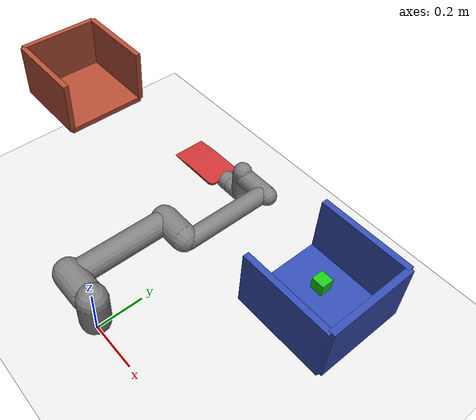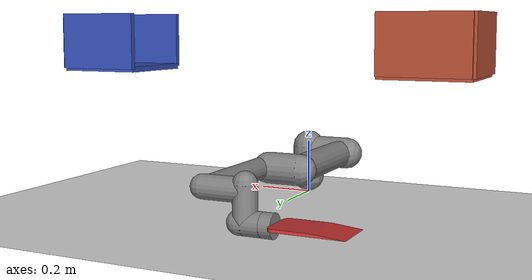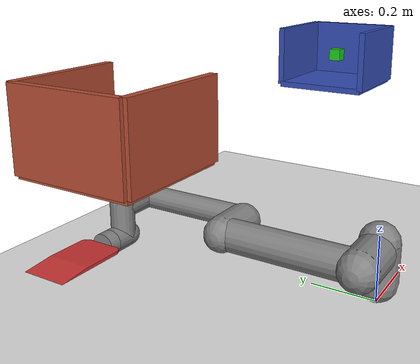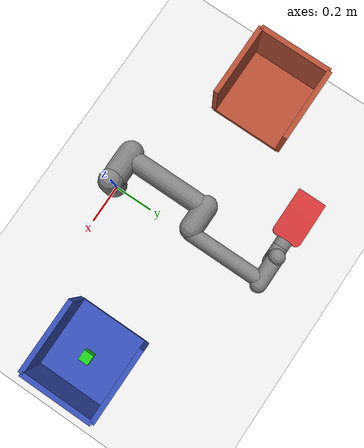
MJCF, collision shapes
<?xml version="1.0" ?>
<mujoco model="ur5e_pick_place">
    <compiler angle="radian" meshdir="assets" autolimits="true"/>

    <option integrator="implicitfast" gravity="0 0 -9.81">
        <flag contact="enable"/>
    </option>

    <!-- Default settings for physics and contact -->
    <default>
        <geom friction="1 0.005 0.0001" condim="3"/>
        <default class="ur5e">
            <material specular="0.5" shininess="0.25"/>
            <joint axis="0 1 0" range="-6.28319 6.28319" armature="0.1"/>
            <general gaintype="fixed" biastype="affine" ctrlrange="-6.2831 6.2831" gainprm="2000" biasprm="0 -2000 -400"
                forcerange="-150 150"/>
            <default class="size3">
                <default class="size3_limited">
                <joint range="-3.1415 3.1415"/>
                <general ctrlrange="-3.1415 3.1415"/>
                </default>
            </default>
            <default class="size1">
                <general gainprm="500" biasprm="0 -500 -100" forcerange="-28 28"/>
            </default>
            <default class="visual">
                <geom type="mesh" contype="0" conaffinity="0" group="2"/>
            </default>
            <default class="collision">
                <geom type="capsule" group="3"/>
                <default class="eef_collision">
                <geom type="cylinder"/>
                </default>
            </default>
            <site size="0.001" rgba="0.5 0.5 0.5 0.3" group="4"/>
        </default>
    </default>

    <!-- Define materials -->
    <asset>
        <material class="ur5e" name="black" rgba="0.033 0.033 0.033 1"/>
        <material class="ur5e" name="jointgray" rgba="0.278 0.278 0.278 1"/>
        <material class="ur5e" name="linkgray" rgba="0.82 0.82 0.82 1"/>
        <material class="ur5e" name="urblue" rgba="0.49 0.678 0.8 1"/>

        <mesh file="base_0.obj"/>
        <mesh file="base_1.obj"/>
        <mesh file="shoulder_0.obj"/>
        <mesh file="shoulder_1.obj"/>
        <mesh file="shoulder_2.obj"/>
        <mesh file="upperarm_0.obj"/>
        <mesh file="upperarm_1.obj"/>
        <mesh file="upperarm_2.obj"/>
        <mesh file="upperarm_3.obj"/>
        <mesh file="forearm_0.obj"/>
        <mesh file="forearm_1.obj"/>
        <mesh file="forearm_2.obj"/>
        <mesh file="forearm_3.obj"/>
        <mesh file="wrist1_0.obj"/>
        <mesh file="wrist1_1.obj"/>
        <mesh file="wrist1_2.obj"/>
        <mesh file="wrist2_0.obj"/>
        <mesh file="wrist2_1.obj"/>
        <mesh file="wrist2_2.obj"/>
        <mesh file="wrist3.obj"/>

        <material name="blue" rgba="0.49 0.678 0.8 1"/>
        <material name="gray" rgba="0.82 0.82 0.82 1"/>
        <material name="bin1_color" rgba="0.2 0.3 0.7 0.8"/>
        <material name="bin2_color" rgba="0.7 0.3 0.2 0.8"/>
        <material name="cube_color" rgba="0.1 0.8 0.1 1"/>
        <material name="floor_color" rgba="0.9 0.9 0.9 1"/>
        <material name="eef_color" rgba="0.7 0.7 0.7 1"/>

        <mesh name="wedge" file="wedged_panel.stl"/>
    </asset>

    <worldbody>
        <!-- Floor -->
        <geom name="floor" type="plane" size="2 2 0.1" material="floor_color"/>

        <!-- Lighting -->
        <light name="spotlight" pos="0 0 3" dir="0 0 -1" diffuse="0.5 0.5 0.5"/>
        <light name="ambient" pos="0 0 4" dir="0 0 -1" diffuse="0.2 0.2 0.2"/>

        <!-- UR5e Robot -->
        <body name="base" quat="1 0 0 1" childclass="ur5e">
        <inertial mass="4.0" pos="0 0 0" diaginertia="0.00443333156 0.00443333156 0.0072"/>
        <geom mesh="base_0" material="black" class="visual"/>
        <geom mesh="base_1" material="jointgray" class="visual"/>
        <body name="shoulder_link" pos="0 0 0.163">
            <inertial mass="3.7" pos="0 0 0" diaginertia="0.0102675 0.0102675 0.00666"/>
            <joint name="shoulder_pan_joint" class="size3" axis="0 0 1"/>
            <geom mesh="shoulder_0" material="urblue" class="visual"/>
            <geom mesh="shoulder_1" material="black" class="visual"/>
            <geom mesh="shoulder_2" material="jointgray" class="visual"/>
            <geom class="collision" size="0.06 0.06" pos="0 0 -0.04"/>
            <body name="upper_arm_link" pos="0 0.138 0" quat="1 0 1 0">
            <inertial mass="8.393" pos="0 0 0.2125" diaginertia="0.133886 0.133886 0.0151074"/>
            <joint name="shoulder_lift_joint" class="size3"/>
            <geom mesh="upperarm_0" material="linkgray" class="visual"/>
            <geom mesh="upperarm_1" material="black" class="visual"/>
            <geom mesh="upperarm_2" material="jointgray" class="visual"/>
            <geom mesh="upperarm_3" material="urblue" class="visual"/>
            <geom class="collision" pos="0 -0.04 0" quat="1 1 0 0" size="0.06 0.06"/>
            <geom class="collision" size="0.05 0.2" pos="0 0 0.2"/>
            <body name="forearm_link" pos="0 -0.131 0.425">
                <inertial mass="2.275" pos="0 0 0.196" diaginertia="0.0311796 0.0311796 0.004095"/>
                <joint name="elbow_joint" class="size3_limited"/>
                <geom mesh="forearm_0" material="urblue" class="visual"/>
                <geom mesh="forearm_1" material="linkgray" class="visual"/>
                <geom mesh="forearm_2" material="black" class="visual"/>
                <geom mesh="forearm_3" material="jointgray" class="visual"/>
                <geom class="collision" pos="0 0.08 0" quat="1 1 0 0" size="0.055 0.06"/>
                <geom class="collision" size="0.038 0.19" pos="0 0 0.2"/>
                <body name="wrist_1_link" pos="0 0 0.392" quat="1 0 1 0">
                <inertial mass="1.219" pos="0 0.127 0" diaginertia="0.0025599 0.0025599 0.0021942"/>
                <joint name="wrist_1_joint" class="size1"/>
                <geom mesh="wrist1_0" material="black" class="visual"/>
                <geom mesh="wrist1_1" material="urblue" class="visual"/>
                <geom mesh="wrist1_2" material="jointgray" class="visual"/>
                <geom class="collision" pos="0 0.05 0" quat="1 1 0 0" size="0.04 0.07"/>
                <body name="wrist_2_link" pos="0 0.127 0">
                    <inertial mass="1.219" pos="0 0 0.1" diaginertia="0.0025599 0.0025599 0.0021942"/>
                    <joint name="wrist_2_joint" axis="0 0 1" class="size1"/>
                    <geom mesh="wrist2_0" material="black" class="visual"/>
                    <geom mesh="wrist2_1" material="urblue" class="visual"/>
                    <geom mesh="wrist2_2" material="jointgray" class="visual"/>
                    <geom class="collision" size="0.04 0.06" pos="0 0 0.04"/>
                    <geom class="collision" pos="0 0.02 0.1" quat="1 1 0 0" size="0.04 0.04"/>
                    <body name="wrist_3_link" pos="0 0 0.1">
                    <inertial mass="0.1889" pos="0 0.0771683 0" quat="1 0 0 1"
                        diaginertia="0.000132134 9.90863e-05 9.90863e-05"/>
                    <joint name="wrist_3_joint" class="size1"/>
                    <geom material="linkgray" mesh="wrist3" class="visual"/>
                    <geom class="eef_collision" pos="0 0.08 0" quat="1 1 0 0" size="0.04 0.02"/>
                    <site name="attachment_site" pos="0 0.1 0" quat="-1 1 0 0"/>
                        <geom name="wedge" type="mesh" mesh="wedge" rgba="0.8 0.2 0.2 1" pos="-0.045 0.187 0" quat="0 1 1 0"/>
                    </body>
                </body>
                </body>
            </body>
            </body>
        </body>
        </body>

        <!-- Bin 1 -->
        <body name="bin1" pos="0.6 0.4 0.5">
            <geom name="bin1_bottom" type="box" size="0.15 0.15 0.01" material="bin1_color"
                mass="1"/>
            <geom name="bin1_side1" type="box" size="0.15 0.01 0.1" pos="0 0.15 0.1" material="bin1_color"/>
            <geom name="bin1_side2" type="box" size="0.15 0.01 0.1" pos="0 -0.15 0.1" material="bin1_color"/>
            <geom name="bin1_side3" type="box" size="0.01 0.15 0.1" pos="0.15 0 0.1" material="bin1_color"/>
        </body>

        <!-- Bin 2 -->
        <body name="bin2" pos="-0.6 0.4 0.5">
            <geom name="bin2_bottom" type="box" size="0.15 0.15 0.01" material="bin2_color"
                mass="1"/>
            <geom name="bin2_side1" type="box" size="0.15 0.01 0.1" pos="0 0.15 0.1" material="bin2_color"/>
            <geom name="bin2_side2" type="box" size="0.15 0.01 0.1" pos="0 -0.15 0.1" material="bin2_color"/>
            <geom name="bin2_side4" type="box" size="0.01 0.15 0.1" pos="-0.15 0 0.1" material="bin2_color"/>
        </body>

        <!-- Cubes -->
        <body name="cube1" pos="0.6 0.4 0.6">
            <freejoint/>
            <geom name="cube1_geom" type="box" size="0.02 0.02 0.02" material="cube_color" mass="0.05"/>
        </body>
    </worldbody>

    <!-- Actuators -->
    <actuator>
        <general class="size3" name="shoulder_pan" joint="shoulder_pan_joint" gear="100" ctrlrange="-2.0 2.0"/>
        <general class="size3" name="shoulder_lift" joint="shoulder_lift_joint" gear="100" ctrlrange="-2.0 2.0"/>
        <general class="size3_limited" name="elbow" joint="elbow_joint" gear="100" ctrlrange="-2.0 2.0"/>
        <general class="size1" name="wrist_1" joint="wrist_1_joint" gear="100" ctrlrange="-2.0 2.0"/>
        <general class="size1" name="wrist_2" joint="wrist_2_joint" gear="100" ctrlrange="-2.0 2.0"/>
        <general class="size1" name="wrist_3" joint="wrist_3_joint" gear="100" ctrlrange="-2.0 2.0"/>
    </actuator>

    <!-- Sensors -->
    <sensor>
        <framepos objtype="site" objname="attachment_site"/>
        <touch name="eef_touch" site="attachment_site"/>
    </sensor>
</mujoco>
